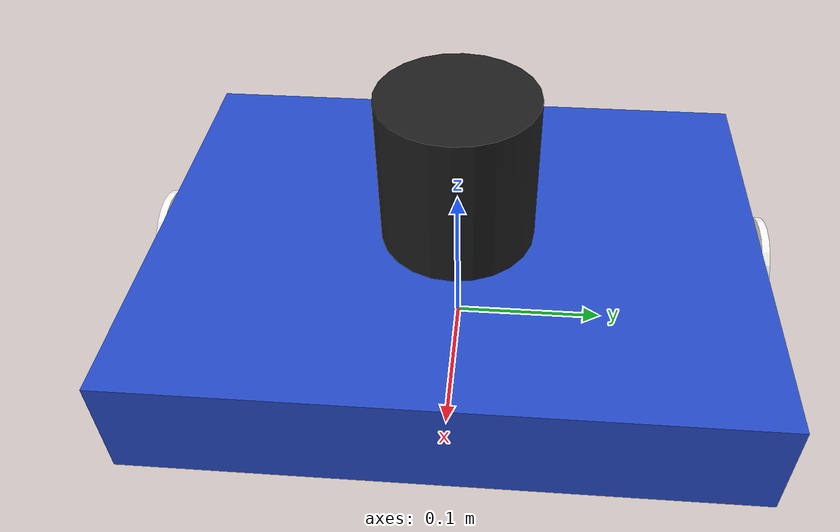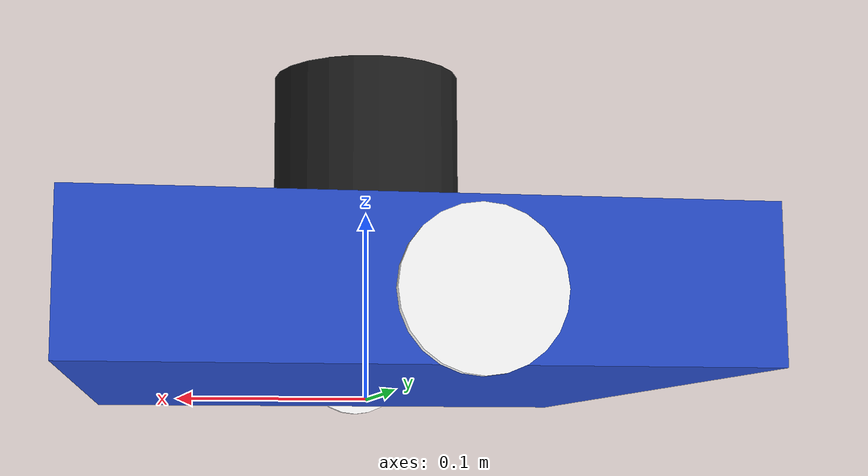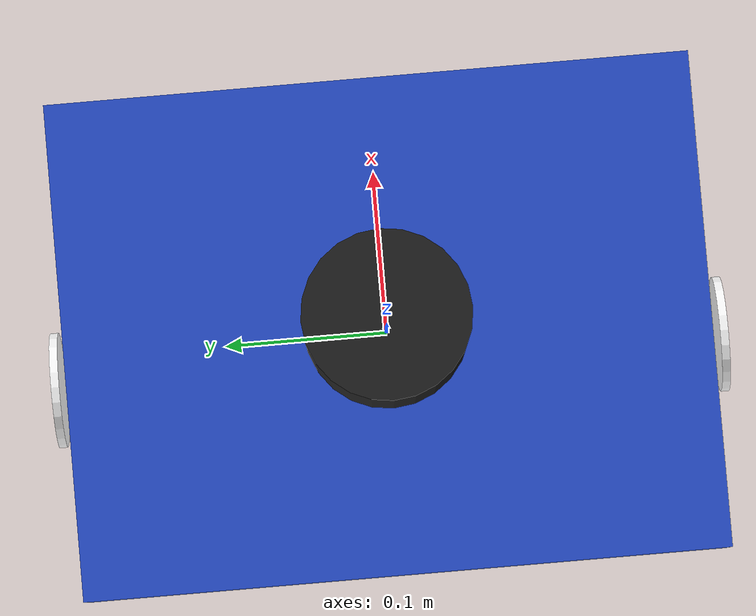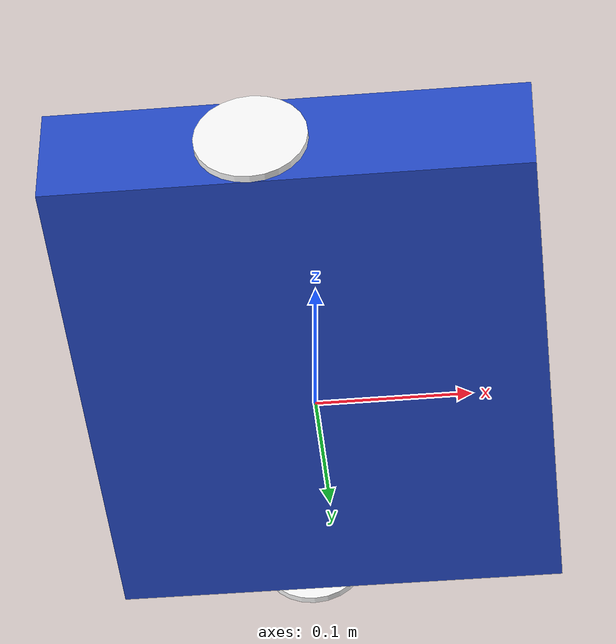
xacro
<?xml version="1.0"?>
<robot name="mv_robot1" xmlns:xacro="http://ros.org/wiki/xacro">

  <xacro:property name="base_width" value="0.39"/>
  <xacro:property name="base_len" value="0.30"/>
  <xacro:property name="base_thick" value="0.07"/>
  <xacro:property name="cover_rad" value="0.15"/>
  <xacro:property name="cover_thick" value="0.01"/>
  <xacro:property name="north_rad" value="0.01"/>

  <xacro:property name="wheel_radius" value="0.035"/>
  <xacro:property name="base_wheel_gap" value="0.007"/>
  <xacro:property name="wheel_separation" value="0.174"/> <!-- not used -->
  <xacro:property name="wheel_joint_offset" value="0.02"/>

  <xacro:property name="caster_wheel_radius" value="${wheel_radius/2}"/>
  <xacro:property name="caster_wheel_mass" value="0.001"/>
  <xacro:property name="caster_wheel_joint_offset" value="0.052"/>

  <!--Gazebo Color Properties-->
  <gazebo reference="base_link">
    <material>Gazebo/Blue</material>
  </gazebo>

  <gazebo reference="top_cover">
    <material>Gazebo/Green</material>
  </gazebo>

  <gazebo reference="left_wheel">
    <material>Gazebo/Yellow</material>
  </gazebo>

  <gazebo reference="right_wheel">
    <material>Gazebo/Green</material>
  </gazebo>

  <gazebo reference="sensor_laser">
    <material>Gazebo/Gray</material>
  </gazebo>

  <gazebo reference="north">
    <material>Gazebo/Blue</material>
  </gazebo>

  <gazebo reference="caster_wheel">
    <material>Gazebo/Blue</material>
    <mu1>0.0</mu1>
    <mu2>0.0</mu2>
    <slip1>1.0</slip1>
    <slip2>1.0</slip2>
    <selfCollide>true</selfCollide>
    <gravity>true</gravity>
  </gazebo>

  <material name="blue">
    <color rgba="0 0 0.8 1"/>
  </material>
  <material name="black">
    <color rgba="0 0 0 1"/>
  </material>
  <material name="white">
    <color rgba="1 1 1 1"/>
  </material>
  <material name="red">
    <color rgba="0.8 0.0 0.0 1.0"/>
  </material>
  <material name="mycolor">
    <color rgba="0.1 0.2 0.2 1.0"/>
  </material>

  <!--Interial macros-->
  <xacro:macro name="cylinder_inertia" params="m r h">
    <inertial>
      <mass value="${m}"/>
      <inertia ixx="${m*(3*r*r+h*h)/12}" ixy = "0" ixz = "0" iyy="${m*(3*r*r+h*h)/12}" iyz = "0" izz="${m*r*r/2}"/>
    </inertial>
  </xacro:macro>

  <xacro:macro name="box_inertia" params="m w h d">
    <inertial>
      <mass value="${m}"/>
      <inertia ixx="${m / 12.0 * (d*d + h*h)}" ixy="0.0" ixz="0.0" iyy="${m / 12.0 * (w*w + h*h)}" iyz="0.0" izz="${m / 12.0 * (w*w + d*d)}"/>
    </inertial>
  </xacro:macro>

  <xacro:macro name="sphere_inertia" params="m r">
    <inertial>
      <mass value="${m}"/>
      <inertia ixx="${2.0*m*(r*r)/5.0}" ixy="0.0" ixz="0.0" iyy="${2.0*m*(r*r)/5.0}" iyz="0.0" izz="${2.0*m*(r*r)/5.0}"/>
    </inertial>
  </xacro:macro>

  <!--Base Footprint-->
  <link name="base_footprint">
    <visual>
        <origin xyz="0 0 0" rpy="0 0 0" />
        <geometry>
            <box size="0.001 0.001 0.001" />
        </geometry>
    </visual>
  </link>

  <!--Base link-->
  <link name="base_link">
    <xacro:box_inertia m="1" w="${base_len}" h="${base_width}" d="0.01"/>
    <visual>
      <geometry>
        <box size="${base_len} ${base_width} ${base_thick}"/>
      </geometry>
    </visual>
    <collision>
      <geometry>
        <box size="${base_len} ${base_width} ${base_thick}"/>
      </geometry>
    </collision>
  </link>

  <!--base_link to base_footprint Joint-->
  <joint name="base_link_joint" type="fixed">
    <origin xyz="0 0 ${wheel_radius + 0.005}" rpy="0 0 0" />
    <parent link="base_footprint"/>
    <child link="base_link" />
  </joint>

  <!--Wheel link & joint macro-->
  <xacro:macro name="wheel" params="prefix reflect">
    <link name="${prefix}_wheel">
      <visual>
        <origin xyz="0 0 0" rpy="${reflect * pi/2} 0 0"/>
        <geometry>
          <cylinder radius="${wheel_radius}" length="0.005"/>
        </geometry>
        <material name="white"/>
      </visual>
      <collision>
        <origin xyz="0 0 0" rpy="${reflect * pi/2} 0 0"/>
        <geometry>
          <cylinder radius="${wheel_radius}" length="0.005"/>
        </geometry>
        <surface>
          <friction>
            <ode>
              <mu>200.0</mu>
              <mu2>100.0</mu2>
            </ode>
          </friction>
        </surface>
      </collision>
      <xacro:cylinder_inertia m="1" r="${wheel_radius}" h="0.005"/>
    </link>

    <joint name="${prefix}_wheel_joint" type="continuous">
      <axis xyz="0 1 0" rpy="0 0 0" />
      <parent link="base_link"/>
      <child link="${prefix}_wheel"/>
      <origin xyz="${-wheel_joint_offset} ${((base_width/2)+base_wheel_gap)*reflect} -0.005" rpy="0 0 0"/>
    </joint>
    <transmission name="${prefix}_wheel_transmission">
      <type>transmission_interface/SimpleTransmission</type>
      <actuator name="${prefix}_motor">
        <mechanicalReduction>0</mechanicalReduction>
      </actuator>
      <joint name="${prefix}_wheel_joint">
        <hardwareInterface>hardware_interface/VelocityJointInterface</hardwareInterface>
      </joint>
    </transmission>
  </xacro:macro>

  <!--Create Left & Right Wheel links/joints-->
  <xacro:wheel prefix="left" reflect="1"/>
  <xacro:wheel prefix="right" reflect="-1"/>

  <!--Caster Wheel Link -->
  <link name="caster_wheel">
    <visual>
      <origin xyz="0 0 0" rpy="0 0 0"/>
      <geometry>
        <sphere radius="${caster_wheel_radius}"/>
      </geometry>
      <material name="blue"/>
    </visual>
    <collision>
      <origin xyz="0 0 0" rpy="0 0 0"/>
      <geometry>
        <sphere radius="${caster_wheel_radius}"/>
      </geometry>
    </collision>
    <xacro:sphere_inertia m="1" r="${caster_wheel_radius}"/>
  </link>

  <!-- Caster Wheel Joint -->
	<joint name="fixed" type="fixed">
	  	<parent link="base_link"/>
	  	<child link="caster_wheel"/>
	</joint>

  <!-- laser  -->
  <xacro:property name="laser_size_x" value="0.03"/>
  <xacro:property name="laser_size_y" value="0.03"/>
  <xacro:property name="laser_size_z" value="0.04"/>
  <xacro:property name="laser_origin_x" value="0"/>
  <xacro:property name="laser_origin_y" value="0"/>
  <xacro:property name="laser_origin_z" value="${(cover_thick + laser_size_z)/ 2}"/>

  <link name="lidar_link">
    <inertial>
      <origin xyz="0 0 0" rpy="0 0 0"/>
      <mass value="0.125"/>
      <inertia ixx="0.001"  ixy="0"  ixz="0" iyy="0.001" iyz="0" izz="0.001" />
    </inertial>

    <collision>
      <origin xyz="0 0 0" rpy="0 0 0"/>
      <geometry>
         <cylinder radius="0.050" length="0.10"/>
      </geometry>
    </collision>

    <visual>
      <origin xyz="0 0 0" rpy="0 0 0"/>
      <geometry>
         <cylinder radius="0.050" length="0.10"/>
      </geometry>
    </visual>
  </link>

  <joint name="lidar_joint" type="fixed">
    <parent link="base_link"/>
    <child link="lidar_link"/>
    <origin xyz="0.0 0.0 0.085" rpy="0 0 0"/>
  </joint>
   <gazebo reference="lidar_link">
    <sensor name="lidar" type="ray">
      <always_on>true</always_on>
      <visualize>false</visualize>
      <update_rate>5</update_rate>
      <ray>
        <scan>
          <horizontal>
            <samples>180</samples>
            <resolution>1.000000</resolution>
            <min_angle>-3.14</min_angle>
            <max_angle>3.14</max_angle>
          </horizontal>
        </scan>
        <range>
          <min>0.3</min>
          <max>30.0</max>
          <resolution>0.01</resolution>
        </range>
        <noise>
          <type>gaussian</type>
          <mean>0.0</mean>
          <stddev>0.01</stddev>
        </noise>
      </ray>
      <plugin name="scan" filename="libgazebo_ros_ray_sensor.so">
        <ros>
          <remapping>~/out:=scan</remapping>
        </ros>
        <output_type>sensor_msgs/LaserScan</output_type>
        <frame_name>lidar_link</frame_name>
      </plugin>
    </sensor>
  </gazebo>
  <gazebo reference="lidar_link">
    <mu1>0.01</mu1>
    <mu2>0.01</mu2>
    <material>Gazebo/Black</material>
  </gazebo>

  <gazebo>
    <plugin name="differential_drive_controller" filename="libgazebo_ros_diff_drive.so">
      <always_on>false</always_on>
      <legacy_mode>false</legacy_mode>
      <update_rate>20</update_rate>
      <left_joint>left_wheel_joint</left_joint>
      <right_joint>right_wheel_joint</right_joint>
      <wheel_separation>${wheel_separation}</wheel_separation>
      <wheel_diameter>${wheel_radius * 2}</wheel_diameter>
     <!-- limits -->
      <max_wheel_torque>120</max_wheel_torque>
      <max_wheel_acceleration>11.0</max_wheel_acceleration>

      <!-- Receive velocity commands on this ROS topic -->
      <command_topic>cmd_vel</command_topic>

      <!-- output -->
      <!-- When false, publish no wheel odometry data to a ROS topic -->
      <publish_odom>true</publish_odom>

      <!-- When true, publish coordinate transform from odom to base_footprint -->
      <!-- I usually use the robot_localization package to publish this transform -->
      <publish_odom_tf>false</publish_odom_tf>
          <!-- the abovbe if made on creates problem rviz -->
      <!-- When true, publish coordinate transform from base_link to the wheels -->
      <!-- The robot_state_publisher package is often used to publish this transform -->
      <publish_wheel_tf>true</publish_wheel_tf>

      <odometry_topic>odom</odometry_topic>
      <odometry_frame>odom</odometry_frame>
      <robot_base_frame>base_link</robot_base_frame>

      <odometry_source>1</odometry_source>
    </plugin>
    <plugin name="fishbot_joint_state" filename="libgazebo_ros_joint_state_publisher.so">
          <ros>
            <remapping>~/out:=joint_states</remapping>
          </ros>
          <update_rate>30</update_rate>
          <joint_name>left_wheel_joint</joint_name>
          <joint_name>right_wheel_joint</joint_name>
      </plugin>
   </gazebo>

  <!--Gazebo Hokuyo Laser Plugin-->
   <!-- Add ROS plugin so we can interact with our robot -->
  <gazebo>
    <plugin name="gazebo_ros_control" filename="libgazebo_ros_control.so">
      <robotNamespace>/</robotNamespace>
    </plugin>
  </gazebo>

  <xacro:include filename="$(find fl_robot_py)/urdf/robot20230318plugin.xacro"/>

</robot>
